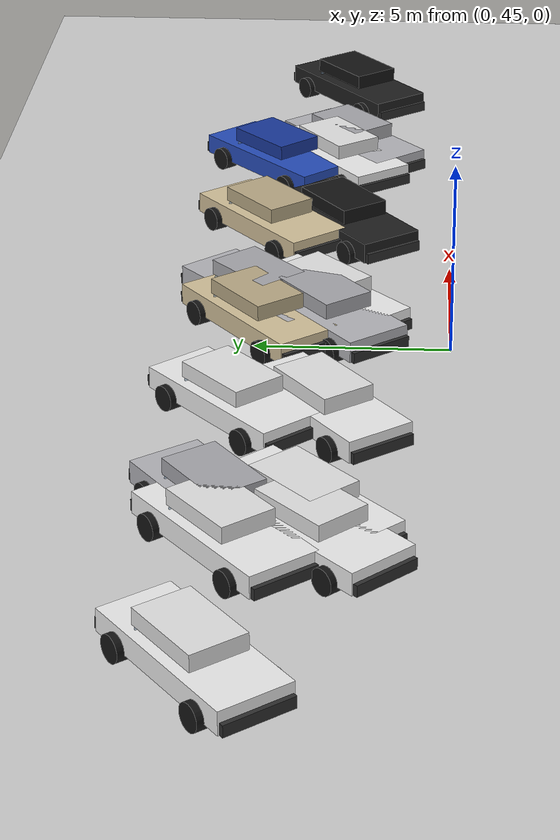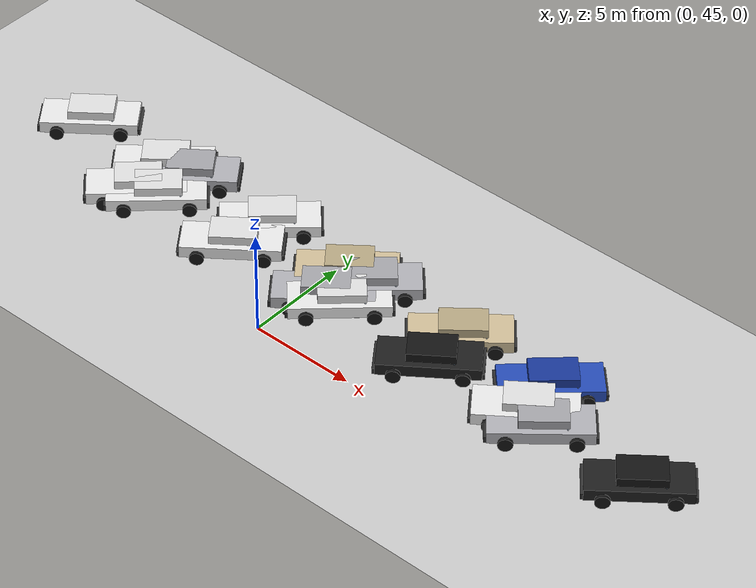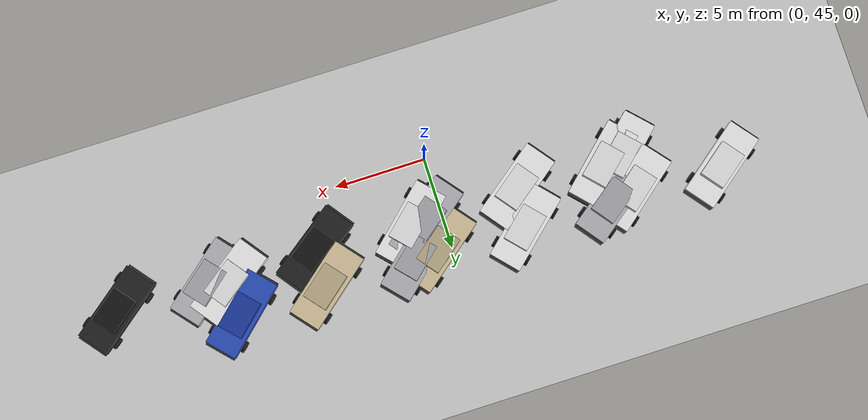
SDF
<sdf version="1.6">
 <world name="parking_lot">
  <model name="ground_plane">
   <static>true</static>
   <link name="link">
    <collision name="collision">
     <geometry><plane><normal>0 0 1</normal><size>400 300</size></plane></geometry>
     <surface><friction><ode><mu>0.8</mu><mu2>0.8</mu2></ode></friction></surface>
    </collision>
    <visual name="visual">
     <cast_shadows>false</cast_shadows>
     <geometry><plane><normal>0 0 1</normal><size>400 300</size></plane></geometry>
     <material>
      <script><uri>file://media/materials/scripts/gazebo.material</uri><name>Gazebo/Grey</name></script>
      <ambient>0.28 0.28 0.27 1</ambient>
      <diffuse>0.32 0.32 0.30 1</diffuse>
      <specular>0.01 0.01 0.01 1</specular>
     </material>
    </visual>
   </link>
  </model>
  <model name="car_0032">
   <static>true</static>
   <pose>-10.052 48.015 0 0 0 0.7639</pose>
   <link name="body">
    <visual name="body_vis">
     <pose>0 0 0.55 0 0 0</pose>
     <geometry><box><size>4.45 1.80 0.55</size></box></geometry>
     <material>
      <ambient>0.15 0.15 0.15 1</ambient>
      <diffuse>0.92 0.92 0.92 1</diffuse>
      <specular>0.4 0.4 0.4 1</specular>
     </material>
    </visual>
    <visual name="roof_vis">
     <pose>0.10 0 1.12 0 0 0</pose>
     <geometry><box><size>2.10 1.40 0.40</size></box></geometry>
     <material>
      <ambient>0.10 0.10 0.10 1</ambient>
      <diffuse>0.88 0.88 0.88 1</diffuse>
      <specular>0.5 0.5 0.5 1</specular>
     </material>
    </visual>
    <visual name="glass_f">
     <pose>1.02 0 0.95 0 -0.45 0</pose>
     <geometry><box><size>0.05 1.35 0.38</size></box></geometry>
     <material><diffuse>0.50 0.60 0.70 0.6</diffuse></material>
    </visual>
    <visual name="bumper_f">
     <pose>2.28 0 0.42 0 0 0</pose>
     <geometry><box><size>0.12 1.72 0.28</size></box></geometry>
     <material><diffuse>0.18 0.18 0.18 1</diffuse></material>
    </visual>
    <visual name="bumper_r">
     <pose>-2.28 0 0.42 0 0 0</pose>
     <geometry><box><size>0.12 1.72 0.28</size></box></geometry>
     <material><diffuse>0.18 0.18 0.18 1</diffuse></material>
    </visual>
    <visual name="wfl">
     <pose>1.45 0.85 0.32 1.5708 0 0</pose>
     <geometry><cylinder><radius>0.32</radius><length>0.44</length></cylinder></geometry>
     <material><diffuse>0.08 0.08 0.08 1</diffuse></material>
    </visual>
    <visual name="wfr">
     <pose>1.45 -0.85 0.32 1.5708 0 0</pose>
     <geometry><cylinder><radius>0.32</radius><length>0.44</length></cylinder></geometry>
     <material><diffuse>0.08 0.08 0.08 1</diffuse></material>
    </visual>
    <visual name="wrl">
     <pose>-1.45 0.85 0.32 1.5708 0 0</pose>
     <geometry><cylinder><radius>0.32</radius><length>0.44</length></cylinder></geometry>
     <material><diffuse>0.08 0.08 0.08 1</diffuse></material>
    </visual>
    <visual name="wrr">
     <pose>-1.45 -0.85 0.32 1.5708 0 0</pose>
     <geometry><cylinder><radius>0.32</radius><length>0.44</length></cylinder></geometry>
     <material><diffuse>0.08 0.08 0.08 1</diffuse></material>
    </visual>
    <collision name="col">
     <pose>0 0 0.55 0 0 0</pose>
     <geometry><box><size>4.45 1.80 1.30</size></box></geometry>
    </collision>
   </link>
  </model>
  <model name="car_0034">
   <static>true</static>
   <pose>-15.059 50.168 0 0 0 0.6656</pose>
   <link name="body">
    <visual name="body_vis">
     <pose>0 0 0.55 0 0 0</pose>
     <geometry><box><size>4.45 1.80 0.55</size></box></geometry>
     <material>
      <ambient>0.15 0.15 0.15 1</ambient>
      <diffuse>0.92 0.92 0.92 1</diffuse>
      <specular>0.4 0.4 0.4 1</specular>
     </material>
    </visual>
    <visual name="roof_vis">
     <pose>0.10 0 1.12 0 0 0</pose>
     <geometry><box><size>2.10 1.40 0.40</size></box></geometry>
     <material>
      <ambient>0.10 0.10 0.10 1</ambient>
      <diffuse>0.88 0.88 0.88 1</diffuse>
      <specular>0.5 0.5 0.5 1</specular>
     </material>
    </visual>
    <visual name="glass_f">
     <pose>1.02 0 0.95 0 -0.45 0</pose>
     <geometry><box><size>0.05 1.35 0.38</size></box></geometry>
     <material><diffuse>0.50 0.60 0.70 0.6</diffuse></material>
    </visual>
    <visual name="bumper_f">
     <pose>2.28 0 0.42 0 0 0</pose>
     <geometry><box><size>0.12 1.72 0.28</size></box></geometry>
     <material><diffuse>0.18 0.18 0.18 1</diffuse></material>
    </visual>
    <visual name="bumper_r">
     <pose>-2.28 0 0.42 0 0 0</pose>
     <geometry><box><size>0.12 1.72 0.28</size></box></geometry>
     <material><diffuse>0.18 0.18 0.18 1</diffuse></material>
    </visual>
    <visual name="wfl">
     <pose>1.45 0.85 0.32 1.5708 0 0</pose>
     <geometry><cylinder><radius>0.32</radius><length>0.44</length></cylinder></geometry>
     <material><diffuse>0.08 0.08 0.08 1</diffuse></material>
    </visual>
    <visual name="wfr">
     <pose>1.45 -0.85 0.32 1.5708 0 0</pose>
     <geometry><cylinder><radius>0.32</radius><length>0.44</length></cylinder></geometry>
     <material><diffuse>0.08 0.08 0.08 1</diffuse></material>
    </visual>
    <visual name="wrl">
     <pose>-1.45 0.85 0.32 1.5708 0 0</pose>
     <geometry><cylinder><radius>0.32</radius><length>0.44</length></cylinder></geometry>
     <material><diffuse>0.08 0.08 0.08 1</diffuse></material>
    </visual>
    <visual name="wrr">
     <pose>-1.45 -0.85 0.32 1.5708 0 0</pose>
     <geometry><cylinder><radius>0.32</radius><length>0.44</length></cylinder></geometry>
     <material><diffuse>0.08 0.08 0.08 1</diffuse></material>
    </visual>
    <collision name="col">
     <pose>0 0 0.55 0 0 0</pose>
     <geometry><box><size>4.45 1.80 1.30</size></box></geometry>
    </collision>
   </link>
  </model>
  <model name="car_0035">
   <static>true</static>
   <pose>-10.230 49.956 0 0 0 0.6890</pose>
   <link name="body">
    <visual name="body_vis">
     <pose>0 0 0.55 0 0 0</pose>
     <geometry><box><size>4.45 1.80 0.55</size></box></geometry>
     <material>
      <ambient>0.15 0.15 0.15 1</ambient>
      <diffuse>0.92 0.92 0.92 1</diffuse>
      <specular>0.4 0.4 0.4 1</specular>
     </material>
    </visual>
    <visual name="roof_vis">
     <pose>0.10 0 1.12 0 0 0</pose>
     <geometry><box><size>2.10 1.40 0.40</size></box></geometry>
     <material>
      <ambient>0.10 0.10 0.10 1</ambient>
      <diffuse>0.88 0.88 0.88 1</diffuse>
      <specular>0.5 0.5 0.5 1</specular>
     </material>
    </visual>
    <visual name="glass_f">
     <pose>1.02 0 0.95 0 -0.45 0</pose>
     <geometry><box><size>0.05 1.35 0.38</size></box></geometry>
     <material><diffuse>0.50 0.60 0.70 0.6</diffuse></material>
    </visual>
    <visual name="bumper_f">
     <pose>2.28 0 0.42 0 0 0</pose>
     <geometry><box><size>0.12 1.72 0.28</size></box></geometry>
     <material><diffuse>0.18 0.18 0.18 1</diffuse></material>
    </visual>
    <visual name="bumper_r">
     <pose>-2.28 0 0.42 0 0 0</pose>
     <geometry><box><size>0.12 1.72 0.28</size></box></geometry>
     <material><diffuse>0.18 0.18 0.18 1</diffuse></material>
    </visual>
    <visual name="wfl">
     <pose>1.45 0.85 0.32 1.5708 0 0</pose>
     <geometry><cylinder><radius>0.32</radius><length>0.44</length></cylinder></geometry>
     <material><diffuse>0.08 0.08 0.08 1</diffuse></material>
    </visual>
    <visual name="wfr">
     <pose>1.45 -0.85 0.32 1.5708 0 0</pose>
     <geometry><cylinder><radius>0.32</radius><length>0.44</length></cylinder></geometry>
     <material><diffuse>0.08 0.08 0.08 1</diffuse></material>
    </visual>
    <visual name="wrl">
     <pose>-1.45 0.85 0.32 1.5708 0 0</pose>
     <geometry><cylinder><radius>0.32</radius><length>0.44</length></cylinder></geometry>
     <material><diffuse>0.08 0.08 0.08 1</diffuse></material>
    </visual>
    <visual name="wrr">
     <pose>-1.45 -0.85 0.32 1.5708 0 0</pose>
     <geometry><cylinder><radius>0.32</radius><length>0.44</length></cylinder></geometry>
     <material><diffuse>0.08 0.08 0.08 1</diffuse></material>
    </visual>
    <collision name="col">
     <pose>0 0 0.55 0 0 0</pose>
     <geometry><box><size>4.45 1.80 1.30</size></box></geometry>
    </collision>
   </link>
  </model>
  <model name="car_0036">
   <static>true</static>
   <pose>-9.023 48.227 0 0 0 0.7506</pose>
   <link name="body">
    <visual name="body_vis">
     <pose>0 0 0.55 0 0 0</pose>
     <geometry><box><size>4.45 1.80 0.55</size></box></geometry>
     <material>
      <ambient>0.15 0.15 0.15 1</ambient>
      <diffuse>0.92 0.92 0.92 1</diffuse>
      <specular>0.4 0.4 0.4 1</specular>
     </material>
    </visual>
    <visual name="roof_vis">
     <pose>0.10 0 1.12 0 0 0</pose>
     <geometry><box><size>2.10 1.40 0.40</size></box></geometry>
     <material>
      <ambient>0.10 0.10 0.10 1</ambient>
      <diffuse>0.88 0.88 0.88 1</diffuse>
      <specular>0.5 0.5 0.5 1</specular>
     </material>
    </visual>
    <visual name="glass_f">
     <pose>1.02 0 0.95 0 -0.45 0</pose>
     <geometry><box><size>0.05 1.35 0.38</size></box></geometry>
     <material><diffuse>0.50 0.60 0.70 0.6</diffuse></material>
    </visual>
    <visual name="bumper_f">
     <pose>2.28 0 0.42 0 0 0</pose>
     <geometry><box><size>0.12 1.72 0.28</size></box></geometry>
     <material><diffuse>0.18 0.18 0.18 1</diffuse></material>
    </visual>
    <visual name="bumper_r">
     <pose>-2.28 0 0.42 0 0 0</pose>
     <geometry><box><size>0.12 1.72 0.28</size></box></geometry>
     <material><diffuse>0.18 0.18 0.18 1</diffuse></material>
    </visual>
    <visual name="wfl">
     <pose>1.45 0.85 0.32 1.5708 0 0</pose>
     <geometry><cylinder><radius>0.32</radius><length>0.44</length></cylinder></geometry>
     <material><diffuse>0.08 0.08 0.08 1</diffuse></material>
    </visual>
    <visual name="wfr">
     <pose>1.45 -0.85 0.32 1.5708 0 0</pose>
     <geometry><cylinder><radius>0.32</radius><length>0.44</length></cylinder></geometry>
     <material><diffuse>0.08 0.08 0.08 1</diffuse></material>
    </visual>
    <visual name="wrl">
     <pose>-1.45 0.85 0.32 1.5708 0 0</pose>
     <geometry><cylinder><radius>0.32</radius><length>0.44</length></cylinder></geometry>
     <material><diffuse>0.08 0.08 0.08 1</diffuse></material>
    </visual>
    <visual name="wrr">
     <pose>-1.45 -0.85 0.32 1.5708 0 0</pose>
     <geometry><cylinder><radius>0.32</radius><length>0.44</length></cylinder></geometry>
     <material><diffuse>0.08 0.08 0.08 1</diffuse></material>
    </visual>
    <collision name="col">
     <pose>0 0 0.55 0 0 0</pose>
     <geometry><box><size>4.45 1.80 1.30</size></box></geometry>
    </collision>
   </link>
  </model>
  <model name="car_0037">
   <static>true</static>
   <pose>-4.268 48.000 0 0 0 0.6533</pose>
   <link name="body">
    <visual name="body_vis">
     <pose>0 0 0.55 0 0 0</pose>
     <geometry><box><size>4.45 1.80 0.55</size></box></geometry>
     <material>
      <ambient>0.15 0.15 0.15 1</ambient>
      <diffuse>0.92 0.92 0.92 1</diffuse>
      <specular>0.4 0.4 0.4 1</specular>
     </material>
    </visual>
    <visual name="roof_vis">
     <pose>0.10 0 1.12 0 0 0</pose>
     <geometry><box><size>2.10 1.40 0.40</size></box></geometry>
     <material>
      <ambient>0.10 0.10 0.10 1</ambient>
      <diffuse>0.88 0.88 0.88 1</diffuse>
      <specular>0.5 0.5 0.5 1</specular>
     </material>
    </visual>
    <visual name="glass_f">
     <pose>1.02 0 0.95 0 -0.45 0</pose>
     <geometry><box><size>0.05 1.35 0.38</size></box></geometry>
     <material><diffuse>0.50 0.60 0.70 0.6</diffuse></material>
    </visual>
    <visual name="bumper_f">
     <pose>2.28 0 0.42 0 0 0</pose>
     <geometry><box><size>0.12 1.72 0.28</size></box></geometry>
     <material><diffuse>0.18 0.18 0.18 1</diffuse></material>
    </visual>
    <visual name="bumper_r">
     <pose>-2.28 0 0.42 0 0 0</pose>
     <geometry><box><size>0.12 1.72 0.28</size></box></geometry>
     <material><diffuse>0.18 0.18 0.18 1</diffuse></material>
    </visual>
    <visual name="wfl">
     <pose>1.45 0.85 0.32 1.5708 0 0</pose>
     <geometry><cylinder><radius>0.32</radius><length>0.44</length></cylinder></geometry>
     <material><diffuse>0.08 0.08 0.08 1</diffuse></material>
    </visual>
    <visual name="wfr">
     <pose>1.45 -0.85 0.32 1.5708 0 0</pose>
     <geometry><cylinder><radius>0.32</radius><length>0.44</length></cylinder></geometry>
     <material><diffuse>0.08 0.08 0.08 1</diffuse></material>
    </visual>
    <visual name="wrl">
     <pose>-1.45 0.85 0.32 1.5708 0 0</pose>
     <geometry><cylinder><radius>0.32</radius><length>0.44</length></cylinder></geometry>
     <material><diffuse>0.08 0.08 0.08 1</diffuse></material>
    </visual>
    <visual name="wrr">
     <pose>-1.45 -0.85 0.32 1.5708 0 0</pose>
     <geometry><cylinder><radius>0.32</radius><length>0.44</length></cylinder></geometry>
     <material><diffuse>0.08 0.08 0.08 1</diffuse></material>
    </visual>
    <collision name="col">
     <pose>0 0 0.55 0 0 0</pose>
     <geometry><box><size>4.45 1.80 1.30</size></box></geometry>
    </collision>
   </link>
  </model>
  <model name="car_0038">
   <static>true</static>
   <pose>0.906 48.185 0 0 0 0.6700</pose>
   <link name="body">
    <visual name="body_vis">
     <pose>0 0 0.55 0 0 0</pose>
     <geometry><box><size>4.45 1.80 0.55</size></box></geometry>
     <material>
      <ambient>0.15 0.15 0.15 1</ambient>
      <diffuse>0.70 0.70 0.72 1</diffuse>
      <specular>0.4 0.4 0.4 1</specular>
     </material>
    </visual>
    <visual name="roof_vis">
     <pose>0.10 0 1.12 0 0 0</pose>
     <geometry><box><size>2.10 1.40 0.40</size></box></geometry>
     <material>
      <ambient>0.10 0.10 0.10 1</ambient>
      <diffuse>0.65 0.65 0.67 1</diffuse>
      <specular>0.5 0.5 0.5 1</specular>
     </material>
    </visual>
    <visual name="glass_f">
     <pose>1.02 0 0.95 0 -0.45 0</pose>
     <geometry><box><size>0.05 1.35 0.38</size></box></geometry>
     <material><diffuse>0.50 0.60 0.70 0.6</diffuse></material>
    </visual>
    <visual name="bumper_f">
     <pose>2.28 0 0.42 0 0 0</pose>
     <geometry><box><size>0.12 1.72 0.28</size></box></geometry>
     <material><diffuse>0.18 0.18 0.18 1</diffuse></material>
    </visual>
    <visual name="bumper_r">
     <pose>-2.28 0 0.42 0 0 0</pose>
     <geometry><box><size>0.12 1.72 0.28</size></box></geometry>
     <material><diffuse>0.18 0.18 0.18 1</diffuse></material>
    </visual>
    <visual name="wfl">
     <pose>1.45 0.85 0.32 1.5708 0 0</pose>
     <geometry><cylinder><radius>0.32</radius><length>0.44</length></cylinder></geometry>
     <material><diffuse>0.08 0.08 0.08 1</diffuse></material>
    </visual>
    <visual name="wfr">
     <pose>1.45 -0.85 0.32 1.5708 0 0</pose>
     <geometry><cylinder><radius>0.32</radius><length>0.44</length></cylinder></geometry>
     <material><diffuse>0.08 0.08 0.08 1</diffuse></material>
    </visual>
    <visual name="wrl">
     <pose>-1.45 0.85 0.32 1.5708 0 0</pose>
     <geometry><cylinder><radius>0.32</radius><length>0.44</length></cylinder></geometry>
     <material><diffuse>0.08 0.08 0.08 1</diffuse></material>
    </visual>
    <visual name="wrr">
     <pose>-1.45 -0.85 0.32 1.5708 0 0</pose>
     <geometry><cylinder><radius>0.32</radius><length>0.44</length></cylinder></geometry>
     <material><diffuse>0.08 0.08 0.08 1</diffuse></material>
    </visual>
    <collision name="col">
     <pose>0 0 0.55 0 0 0</pose>
     <geometry><box><size>4.45 1.80 1.30</size></box></geometry>
    </collision>
   </link>
  </model>
  <model name="car_0039">
   <static>true</static>
   <pose>-8.931 50.204 0 0 0 0.6497</pose>
   <link name="body">
    <visual name="body_vis">
     <pose>0 0 0.55 0 0 0</pose>
     <geometry><box><size>4.45 1.80 0.55</size></box></geometry>
     <material>
      <ambient>0.15 0.15 0.15 1</ambient>
      <diffuse>0.70 0.70 0.72 1</diffuse>
      <specular>0.4 0.4 0.4 1</specular>
     </material>
    </visual>
    <visual name="roof_vis">
     <pose>0.10 0 1.12 0 0 0</pose>
     <geometry><box><size>2.10 1.40 0.40</size></box></geometry>
     <material>
      <ambient>0.10 0.10 0.10 1</ambient>
      <diffuse>0.65 0.65 0.67 1</diffuse>
      <specular>0.5 0.5 0.5 1</specular>
     </material>
    </visual>
    <visual name="glass_f">
     <pose>1.02 0 0.95 0 -0.45 0</pose>
     <geometry><box><size>0.05 1.35 0.38</size></box></geometry>
     <material><diffuse>0.50 0.60 0.70 0.6</diffuse></material>
    </visual>
    <visual name="bumper_f">
     <pose>2.28 0 0.42 0 0 0</pose>
     <geometry><box><size>0.12 1.72 0.28</size></box></geometry>
     <material><diffuse>0.18 0.18 0.18 1</diffuse></material>
    </visual>
    <visual name="bumper_r">
     <pose>-2.28 0 0.42 0 0 0</pose>
     <geometry><box><size>0.12 1.72 0.28</size></box></geometry>
     <material><diffuse>0.18 0.18 0.18 1</diffuse></material>
    </visual>
    <visual name="wfl">
     <pose>1.45 0.85 0.32 1.5708 0 0</pose>
     <geometry><cylinder><radius>0.32</radius><length>0.44</length></cylinder></geometry>
     <material><diffuse>0.08 0.08 0.08 1</diffuse></material>
    </visual>
    <visual name="wfr">
     <pose>1.45 -0.85 0.32 1.5708 0 0</pose>
     <geometry><cylinder><radius>0.32</radius><length>0.44</length></cylinder></geometry>
     <material><diffuse>0.08 0.08 0.08 1</diffuse></material>
    </visual>
    <visual name="wrl">
     <pose>-1.45 0.85 0.32 1.5708 0 0</pose>
     <geometry><cylinder><radius>0.32</radius><length>0.44</length></cylinder></geometry>
     <material><diffuse>0.08 0.08 0.08 1</diffuse></material>
    </visual>
    <visual name="wrr">
     <pose>-1.45 -0.85 0.32 1.5708 0 0</pose>
     <geometry><cylinder><radius>0.32</radius><length>0.44</length></cylinder></geometry>
     <material><diffuse>0.08 0.08 0.08 1</diffuse></material>
    </visual>
    <collision name="col">
     <pose>0 0 0.55 0 0 0</pose>
     <geometry><box><size>4.45 1.80 1.30</size></box></geometry>
    </collision>
   </link>
  </model>
  <model name="car_0040">
   <static>true</static>
   <pose>-4.019 50.170 0 0 0 0.7370</pose>
   <link name="body">
    <visual name="body_vis">
     <pose>0 0 0.55 0 0 0</pose>
     <geometry><box><size>4.45 1.80 0.55</size></box></geometry>
     <material>
      <ambient>0.15 0.15 0.15 1</ambient>
      <diffuse>0.92 0.92 0.92 1</diffuse>
      <specular>0.4 0.4 0.4 1</specular>
     </material>
    </visual>
    <visual name="roof_vis">
     <pose>0.10 0 1.12 0 0 0</pose>
     <geometry><box><size>2.10 1.40 0.40</size></box></geometry>
     <material>
      <ambient>0.10 0.10 0.10 1</ambient>
      <diffuse>0.88 0.88 0.88 1</diffuse>
      <specular>0.5 0.5 0.5 1</specular>
     </material>
    </visual>
    <visual name="glass_f">
     <pose>1.02 0 0.95 0 -0.45 0</pose>
     <geometry><box><size>0.05 1.35 0.38</size></box></geometry>
     <material><diffuse>0.50 0.60 0.70 0.6</diffuse></material>
    </visual>
    <visual name="bumper_f">
     <pose>2.28 0 0.42 0 0 0</pose>
     <geometry><box><size>0.12 1.72 0.28</size></box></geometry>
     <material><diffuse>0.18 0.18 0.18 1</diffuse></material>
    </visual>
    <visual name="bumper_r">
     <pose>-2.28 0 0.42 0 0 0</pose>
     <geometry><box><size>0.12 1.72 0.28</size></box></geometry>
     <material><diffuse>0.18 0.18 0.18 1</diffuse></material>
    </visual>
    <visual name="wfl">
     <pose>1.45 0.85 0.32 1.5708 0 0</pose>
     <geometry><cylinder><radius>0.32</radius><length>0.44</length></cylinder></geometry>
     <material><diffuse>0.08 0.08 0.08 1</diffuse></material>
    </visual>
    <visual name="wfr">
     <pose>1.45 -0.85 0.32 1.5708 0 0</pose>
     <geometry><cylinder><radius>0.32</radius><length>0.44</length></cylinder></geometry>
     <material><diffuse>0.08 0.08 0.08 1</diffuse></material>
    </visual>
    <visual name="wrl">
     <pose>-1.45 0.85 0.32 1.5708 0 0</pose>
     <geometry><cylinder><radius>0.32</radius><length>0.44</length></cylinder></geometry>
     <material><diffuse>0.08 0.08 0.08 1</diffuse></material>
    </visual>
    <visual name="wrr">
     <pose>-1.45 -0.85 0.32 1.5708 0 0</pose>
     <geometry><cylinder><radius>0.32</radius><length>0.44</length></cylinder></geometry>
     <material><diffuse>0.08 0.08 0.08 1</diffuse></material>
    </visual>
    <collision name="col">
     <pose>0 0 0.55 0 0 0</pose>
     <geometry><box><size>4.45 1.80 1.30</size></box></geometry>
    </collision>
   </link>
  </model>
  <model name="car_0041">
   <static>true</static>
   <pose>0.715 49.900 0 0 0 0.6736</pose>
   <link name="body">
    <visual name="body_vis">
     <pose>0 0 0.55 0 0 0</pose>
     <geometry><box><size>4.45 1.80 0.55</size></box></geometry>
     <material>
      <ambient>0.15 0.15 0.15 1</ambient>
      <diffuse>0.82 0.75 0.60 1</diffuse>
      <specular>0.4 0.4 0.4 1</specular>
     </material>
    </visual>
    <visual name="roof_vis">
     <pose>0.10 0 1.12 0 0 0</pose>
     <geometry><box><size>2.10 1.40 0.40</size></box></geometry>
     <material>
      <ambient>0.10 0.10 0.10 1</ambient>
      <diffuse>0.72 0.66 0.52 1</diffuse>
      <specular>0.5 0.5 0.5 1</specular>
     </material>
    </visual>
    <visual name="glass_f">
     <pose>1.02 0 0.95 0 -0.45 0</pose>
     <geometry><box><size>0.05 1.35 0.38</size></box></geometry>
     <material><diffuse>0.50 0.60 0.70 0.6</diffuse></material>
    </visual>
    <visual name="bumper_f">
     <pose>2.28 0 0.42 0 0 0</pose>
     <geometry><box><size>0.12 1.72 0.28</size></box></geometry>
     <material><diffuse>0.18 0.18 0.18 1</diffuse></material>
    </visual>
    <visual name="bumper_r">
     <pose>-2.28 0 0.42 0 0 0</pose>
     <geometry><box><size>0.12 1.72 0.28</size></box></geometry>
     <material><diffuse>0.18 0.18 0.18 1</diffuse></material>
    </visual>
    <visual name="wfl">
     <pose>1.45 0.85 0.32 1.5708 0 0</pose>
     <geometry><cylinder><radius>0.32</radius><length>0.44</length></cylinder></geometry>
     <material><diffuse>0.08 0.08 0.08 1</diffuse></material>
    </visual>
    <visual name="wfr">
     <pose>1.45 -0.85 0.32 1.5708 0 0</pose>
     <geometry><cylinder><radius>0.32</radius><length>0.44</length></cylinder></geometry>
     <material><diffuse>0.08 0.08 0.08 1</diffuse></material>
    </visual>
    <visual name="wrl">
     <pose>-1.45 0.85 0.32 1.5708 0 0</pose>
     <geometry><cylinder><radius>0.32</radius><length>0.44</length></cylinder></geometry>
     <material><diffuse>0.08 0.08 0.08 1</diffuse></material>
    </visual>
    <visual name="wrr">
     <pose>-1.45 -0.85 0.32 1.5708 0 0</pose>
     <geometry><cylinder><radius>0.32</radius><length>0.44</length></cylinder></geometry>
     <material><diffuse>0.08 0.08 0.08 1</diffuse></material>
    </visual>
    <collision name="col">
     <pose>0 0 0.55 0 0 0</pose>
     <geometry><box><size>4.45 1.80 1.30</size></box></geometry>
    </collision>
   </link>
  </model>
  <model name="car_0042">
   <static>true</static>
   <pose>1.760 48.215 0 0 0 0.7510</pose>
   <link name="body">
    <visual name="body_vis">
     <pose>0 0 0.55 0 0 0</pose>
     <geometry><box><size>4.45 1.80 0.55</size></box></geometry>
     <material>
      <ambient>0.15 0.15 0.15 1</ambient>
      <diffuse>0.92 0.92 0.92 1</diffuse>
      <specular>0.4 0.4 0.4 1</specular>
     </material>
    </visual>
    <visual name="roof_vis">
     <pose>0.10 0 1.12 0 0 0</pose>
     <geometry><box><size>2.10 1.40 0.40</size></box></geometry>
     <material>
      <ambient>0.10 0.10 0.10 1</ambient>
      <diffuse>0.88 0.88 0.88 1</diffuse>
      <specular>0.5 0.5 0.5 1</specular>
     </material>
    </visual>
    <visual name="glass_f">
     <pose>1.02 0 0.95 0 -0.45 0</pose>
     <geometry><box><size>0.05 1.35 0.38</size></box></geometry>
     <material><diffuse>0.50 0.60 0.70 0.6</diffuse></material>
    </visual>
    <visual name="bumper_f">
     <pose>2.28 0 0.42 0 0 0</pose>
     <geometry><box><size>0.12 1.72 0.28</size></box></geometry>
     <material><diffuse>0.18 0.18 0.18 1</diffuse></material>
    </visual>
    <visual name="bumper_r">
     <pose>-2.28 0 0.42 0 0 0</pose>
     <geometry><box><size>0.12 1.72 0.28</size></box></geometry>
     <material><diffuse>0.18 0.18 0.18 1</diffuse></material>
    </visual>
    <visual name="wfl">
     <pose>1.45 0.85 0.32 1.5708 0 0</pose>
     <geometry><cylinder><radius>0.32</radius><length>0.44</length></cylinder></geometry>
     <material><diffuse>0.08 0.08 0.08 1</diffuse></material>
    </visual>
    <visual name="wfr">
     <pose>1.45 -0.85 0.32 1.5708 0 0</pose>
     <geometry><cylinder><radius>0.32</radius><length>0.44</length></cylinder></geometry>
     <material><diffuse>0.08 0.08 0.08 1</diffuse></material>
    </visual>
    <visual name="wrl">
     <pose>-1.45 0.85 0.32 1.5708 0 0</pose>
     <geometry><cylinder><radius>0.32</radius><length>0.44</length></cylinder></geometry>
     <material><diffuse>0.08 0.08 0.08 1</diffuse></material>
    </visual>
    <visual name="wrr">
     <pose>-1.45 -0.85 0.32 1.5708 0 0</pose>
     <geometry><cylinder><radius>0.32</radius><length>0.44</length></cylinder></geometry>
     <material><diffuse>0.08 0.08 0.08 1</diffuse></material>
    </visual>
    <collision name="col">
     <pose>0 0 0.55 0 0 0</pose>
     <geometry><box><size>4.45 1.80 1.30</size></box></geometry>
    </collision>
   </link>
  </model>
  <model name="car_0043">
   <static>true</static>
   <pose>7.016 47.904 0 0 0 0.6364</pose>
   <link name="body">
    <visual name="body_vis">
     <pose>0 0 0.55 0 0 0</pose>
     <geometry><box><size>4.45 1.80 0.55</size></box></geometry>
     <material>
      <ambient>0.15 0.15 0.15 1</ambient>
      <diffuse>0.12 0.12 0.12 1</diffuse>
      <specular>0.4 0.4 0.4 1</specular>
     </material>
    </visual>
    <visual name="roof_vis">
     <pose>0.10 0 1.12 0 0 0</pose>
     <geometry><box><size>2.10 1.40 0.40</size></box></geometry>
     <material>
      <ambient>0.10 0.10 0.10 1</ambient>
      <diffuse>0.08 0.08 0.08 1</diffuse>
      <specular>0.5 0.5 0.5 1</specular>
     </material>
    </visual>
    <visual name="glass_f">
     <pose>1.02 0 0.95 0 -0.45 0</pose>
     <geometry><box><size>0.05 1.35 0.38</size></box></geometry>
     <material><diffuse>0.50 0.60 0.70 0.6</diffuse></material>
    </visual>
    <visual name="bumper_f">
     <pose>2.28 0 0.42 0 0 0</pose>
     <geometry><box><size>0.12 1.72 0.28</size></box></geometry>
     <material><diffuse>0.18 0.18 0.18 1</diffuse></material>
    </visual>
    <visual name="bumper_r">
     <pose>-2.28 0 0.42 0 0 0</pose>
     <geometry><box><size>0.12 1.72 0.28</size></box></geometry>
     <material><diffuse>0.18 0.18 0.18 1</diffuse></material>
    </visual>
    <visual name="wfl">
     <pose>1.45 0.85 0.32 1.5708 0 0</pose>
     <geometry><cylinder><radius>0.32</radius><length>0.44</length></cylinder></geometry>
     <material><diffuse>0.08 0.08 0.08 1</diffuse></material>
    </visual>
    <visual name="wfr">
     <pose>1.45 -0.85 0.32 1.5708 0 0</pose>
     <geometry><cylinder><radius>0.32</radius><length>0.44</length></cylinder></geometry>
     <material><diffuse>0.08 0.08 0.08 1</diffuse></material>
    </visual>
    <visual name="wrl">
     <pose>-1.45 0.85 0.32 1.5708 0 0</pose>
     <geometry><cylinder><radius>0.32</radius><length>0.44</length></cylinder></geometry>
     <material><diffuse>0.08 0.08 0.08 1</diffuse></material>
    </visual>
    <visual name="wrr">
     <pose>-1.45 -0.85 0.32 1.5708 0 0</pose>
     <geometry><cylinder><radius>0.32</radius><length>0.44</length></cylinder></geometry>
     <material><diffuse>0.08 0.08 0.08 1</diffuse></material>
    </visual>
    <collision name="col">
     <pose>0 0 0.55 0 0 0</pose>
     <geometry><box><size>4.45 1.80 1.30</size></box></geometry>
    </collision>
   </link>
  </model>
  <model name="car_0044">
   <static>true</static>
   <pose>11.889 48.223 0 0 0 0.6403</pose>
   <link name="body">
    <visual name="body_vis">
     <pose>0 0 0.55 0 0 0</pose>
     <geometry><box><size>4.45 1.80 0.55</size></box></geometry>
     <material>
      <ambient>0.15 0.15 0.15 1</ambient>
      <diffuse>0.92 0.92 0.92 1</diffuse>
      <specular>0.4 0.4 0.4 1</specular>
     </material>
    </visual>
    <visual name="roof_vis">
     <pose>0.10 0 1.12 0 0 0</pose>
     <geometry><box><size>2.10 1.40 0.40</size></box></geometry>
     <material>
      <ambient>0.10 0.10 0.10 1</ambient>
      <diffuse>0.88 0.88 0.88 1</diffuse>
      <specular>0.5 0.5 0.5 1</specular>
     </material>
    </visual>
    <visual name="glass_f">
     <pose>1.02 0 0.95 0 -0.45 0</pose>
     <geometry><box><size>0.05 1.35 0.38</size></box></geometry>
     <material><diffuse>0.50 0.60 0.70 0.6</diffuse></material>
    </visual>
    <visual name="bumper_f">
     <pose>2.28 0 0.42 0 0 0</pose>
     <geometry><box><size>0.12 1.72 0.28</size></box></geometry>
     <material><diffuse>0.18 0.18 0.18 1</diffuse></material>
    </visual>
    <visual name="bumper_r">
     <pose>-2.28 0 0.42 0 0 0</pose>
     <geometry><box><size>0.12 1.72 0.28</size></box></geometry>
     <material><diffuse>0.18 0.18 0.18 1</diffuse></material>
    </visual>
    <visual name="wfl">
     <pose>1.45 0.85 0.32 1.5708 0 0</pose>
     <geometry><cylinder><radius>0.32</radius><length>0.44</length></cylinder></geometry>
     <material><diffuse>0.08 0.08 0.08 1</diffuse></material>
    </visual>
    <visual name="wfr">
     <pose>1.45 -0.85 0.32 1.5708 0 0</pose>
     <geometry><cylinder><radius>0.32</radius><length>0.44</length></cylinder></geometry>
     <material><diffuse>0.08 0.08 0.08 1</diffuse></material>
    </visual>
    <visual name="wrl">
     <pose>-1.45 0.85 0.32 1.5708 0 0</pose>
     <geometry><cylinder><radius>0.32</radius><length>0.44</length></cylinder></geometry>
     <material><diffuse>0.08 0.08 0.08 1</diffuse></material>
    </visual>
    <visual name="wrr">
     <pose>-1.45 -0.85 0.32 1.5708 0 0</pose>
     <geometry><cylinder><radius>0.32</radius><length>0.44</length></cylinder></geometry>
     <material><diffuse>0.08 0.08 0.08 1</diffuse></material>
    </visual>
    <collision name="col">
     <pose>0 0 0.55 0 0 0</pose>
     <geometry><box><size>4.45 1.80 1.30</size></box></geometry>
    </collision>
   </link>
  </model>
  <model name="car_0045">
   <static>true</static>
   <pose>1.993 49.935 0 0 0 0.7345</pose>
   <link name="body">
    <visual name="body_vis">
     <pose>0 0 0.55 0 0 0</pose>
     <geometry><box><size>4.45 1.80 0.55</size></box></geometry>
     <material>
      <ambient>0.15 0.15 0.15 1</ambient>
      <diffuse>0.70 0.70 0.72 1</diffuse>
      <specular>0.4 0.4 0.4 1</specular>
     </material>
    </visual>
    <visual name="roof_vis">
     <pose>0.10 0 1.12 0 0 0</pose>
     <geometry><box><size>2.10 1.40 0.40</size></box></geometry>
     <material>
      <ambient>0.10 0.10 0.10 1</ambient>
      <diffuse>0.65 0.65 0.67 1</diffuse>
      <specular>0.5 0.5 0.5 1</specular>
     </material>
    </visual>
    <visual name="glass_f">
     <pose>1.02 0 0.95 0 -0.45 0</pose>
     <geometry><box><size>0.05 1.35 0.38</size></box></geometry>
     <material><diffuse>0.50 0.60 0.70 0.6</diffuse></material>
    </visual>
    <visual name="bumper_f">
     <pose>2.28 0 0.42 0 0 0</pose>
     <geometry><box><size>0.12 1.72 0.28</size></box></geometry>
     <material><diffuse>0.18 0.18 0.18 1</diffuse></material>
    </visual>
    <visual name="bumper_r">
     <pose>-2.28 0 0.42 0 0 0</pose>
     <geometry><box><size>0.12 1.72 0.28</size></box></geometry>
     <material><diffuse>0.18 0.18 0.18 1</diffuse></material>
    </visual>
    <visual name="wfl">
     <pose>1.45 0.85 0.32 1.5708 0 0</pose>
     <geometry><cylinder><radius>0.32</radius><length>0.44</length></cylinder></geometry>
     <material><diffuse>0.08 0.08 0.08 1</diffuse></material>
    </visual>
    <visual name="wfr">
     <pose>1.45 -0.85 0.32 1.5708 0 0</pose>
     <geometry><cylinder><radius>0.32</radius><length>0.44</length></cylinder></geometry>
     <material><diffuse>0.08 0.08 0.08 1</diffuse></material>
    </visual>
    <visual name="wrl">
     <pose>-1.45 0.85 0.32 1.5708 0 0</pose>
     <geometry><cylinder><radius>0.32</radius><length>0.44</length></cylinder></geometry>
     <material><diffuse>0.08 0.08 0.08 1</diffuse></material>
    </visual>
    <visual name="wrr">
     <pose>-1.45 -0.85 0.32 1.5708 0 0</pose>
     <geometry><cylinder><radius>0.32</radius><length>0.44</length></cylinder></geometry>
     <material><diffuse>0.08 0.08 0.08 1</diffuse></material>
    </visual>
    <collision name="col">
     <pose>0 0 0.55 0 0 0</pose>
     <geometry><box><size>4.45 1.80 1.30</size></box></geometry>
    </collision>
   </link>
  </model>
  <model name="car_0046">
   <static>true</static>
   <pose>6.983 49.964 0 0 0 0.6947</pose>
   <link name="body">
    <visual name="body_vis">
     <pose>0 0 0.55 0 0 0</pose>
     <geometry><box><size>4.45 1.80 0.55</size></box></geometry>
     <material>
      <ambient>0.15 0.15 0.15 1</ambient>
      <diffuse>0.82 0.75 0.60 1</diffuse>
      <specular>0.4 0.4 0.4 1</specular>
     </material>
    </visual>
    <visual name="roof_vis">
     <pose>0.10 0 1.12 0 0 0</pose>
     <geometry><box><size>2.10 1.40 0.40</size></box></geometry>
     <material>
      <ambient>0.10 0.10 0.10 1</ambient>
      <diffuse>0.72 0.66 0.52 1</diffuse>
      <specular>0.5 0.5 0.5 1</specular>
     </material>
    </visual>
    <visual name="glass_f">
     <pose>1.02 0 0.95 0 -0.45 0</pose>
     <geometry><box><size>0.05 1.35 0.38</size></box></geometry>
     <material><diffuse>0.50 0.60 0.70 0.6</diffuse></material>
    </visual>
    <visual name="bumper_f">
     <pose>2.28 0 0.42 0 0 0</pose>
     <geometry><box><size>0.12 1.72 0.28</size></box></geometry>
     <material><diffuse>0.18 0.18 0.18 1</diffuse></material>
    </visual>
    <visual name="bumper_r">
     <pose>-2.28 0 0.42 0 0 0</pose>
     <geometry><box><size>0.12 1.72 0.28</size></box></geometry>
     <material><diffuse>0.18 0.18 0.18 1</diffuse></material>
    </visual>
    <visual name="wfl">
     <pose>1.45 0.85 0.32 1.5708 0 0</pose>
     <geometry><cylinder><radius>0.32</radius><length>0.44</length></cylinder></geometry>
     <material><diffuse>0.08 0.08 0.08 1</diffuse></material>
    </visual>
    <visual name="wfr">
     <pose>1.45 -0.85 0.32 1.5708 0 0</pose>
     <geometry><cylinder><radius>0.32</radius><length>0.44</length></cylinder></geometry>
     <material><diffuse>0.08 0.08 0.08 1</diffuse></material>
    </visual>
    <visual name="wrl">
     <pose>-1.45 0.85 0.32 1.5708 0 0</pose>
     <geometry><cylinder><radius>0.32</radius><length>0.44</length></cylinder></geometry>
     <material><diffuse>0.08 0.08 0.08 1</diffuse></material>
    </visual>
    <visual name="wrr">
     <pose>-1.45 -0.85 0.32 1.5708 0 0</pose>
     <geometry><cylinder><radius>0.32</radius><length>0.44</length></cylinder></geometry>
     <material><diffuse>0.08 0.08 0.08 1</diffuse></material>
    </visual>
    <collision name="col">
     <pose>0 0 0.55 0 0 0</pose>
     <geometry><box><size>4.45 1.80 1.30</size></box></geometry>
    </collision>
   </link>
  </model>
  <model name="car_0047">
   <static>true</static>
   <pose>11.725 50.033 0 0 0 0.7501</pose>
   <link name="body">
    <visual name="body_vis">
     <pose>0 0 0.55 0 0 0</pose>
     <geometry><box><size>4.45 1.80 0.55</size></box></geometry>
     <material>
      <ambient>0.15 0.15 0.15 1</ambient>
      <diffuse>0.15 0.30 0.72 1</diffuse>
      <specular>0.4 0.4 0.4 1</specular>
     </material>
    </visual>
    <visual name="roof_vis">
     <pose>0.10 0 1.12 0 0 0</pose>
     <geometry><box><size>2.10 1.40 0.40</size></box></geometry>
     <material>
      <ambient>0.10 0.10 0.10 1</ambient>
      <diffuse>0.10 0.22 0.60 1</diffuse>
      <specular>0.5 0.5 0.5 1</specular>
     </material>
    </visual>
    <visual name="glass_f">
     <pose>1.02 0 0.95 0 -0.45 0</pose>
     <geometry><box><size>0.05 1.35 0.38</size></box></geometry>
     <material><diffuse>0.50 0.60 0.70 0.6</diffuse></material>
    </visual>
    <visual name="bumper_f">
     <pose>2.28 0 0.42 0 0 0</pose>
     <geometry><box><size>0.12 1.72 0.28</size></box></geometry>
     <material><diffuse>0.18 0.18 0.18 1</diffuse></material>
    </visual>
    <visual name="bumper_r">
     <pose>-2.28 0 0.42 0 0 0</pose>
     <geometry><box><size>0.12 1.72 0.28</size></box></geometry>
     <material><diffuse>0.18 0.18 0.18 1</diffuse></material>
    </visual>
    <visual name="wfl">
     <pose>1.45 0.85 0.32 1.5708 0 0</pose>
     <geometry><cylinder><radius>0.32</radius><length>0.44</length></cylinder></geometry>
     <material><diffuse>0.08 0.08 0.08 1</diffuse></material>
    </visual>
    <visual name="wfr">
     <pose>1.45 -0.85 0.32 1.5708 0 0</pose>
     <geometry><cylinder><radius>0.32</radius><length>0.44</length></cylinder></geometry>
     <material><diffuse>0.08 0.08 0.08 1</diffuse></material>
    </visual>
    <visual name="wrl">
     <pose>-1.45 0.85 0.32 1.5708 0 0</pose>
     <geometry><cylinder><radius>0.32</radius><length>0.44</length></cylinder></geometry>
     <material><diffuse>0.08 0.08 0.08 1</diffuse></material>
    </visual>
    <visual name="wrr">
     <pose>-1.45 -0.85 0.32 1.5708 0 0</pose>
     <geometry><cylinder><radius>0.32</radius><length>0.44</length></cylinder></geometry>
     <material><diffuse>0.08 0.08 0.08 1</diffuse></material>
    </visual>
    <collision name="col">
     <pose>0 0 0.55 0 0 0</pose>
     <geometry><box><size>4.45 1.80 1.30</size></box></geometry>
    </collision>
   </link>
  </model>
  <model name="car_0048">
   <static>true</static>
   <pose>12.962 47.856 0 0 0 0.7036</pose>
   <link name="body">
    <visual name="body_vis">
     <pose>0 0 0.55 0 0 0</pose>
     <geometry><box><size>4.45 1.80 0.55</size></box></geometry>
     <material>
      <ambient>0.15 0.15 0.15 1</ambient>
      <diffuse>0.70 0.70 0.72 1</diffuse>
      <specular>0.4 0.4 0.4 1</specular>
     </material>
    </visual>
    <visual name="roof_vis">
     <pose>0.10 0 1.12 0 0 0</pose>
     <geometry><box><size>2.10 1.40 0.40</size></box></geometry>
     <material>
      <ambient>0.10 0.10 0.10 1</ambient>
      <diffuse>0.65 0.65 0.67 1</diffuse>
      <specular>0.5 0.5 0.5 1</specular>
     </material>
    </visual>
    <visual name="glass_f">
     <pose>1.02 0 0.95 0 -0.45 0</pose>
     <geometry><box><size>0.05 1.35 0.38</size></box></geometry>
     <material><diffuse>0.50 0.60 0.70 0.6</diffuse></material>
    </visual>
    <visual name="bumper_f">
     <pose>2.28 0 0.42 0 0 0</pose>
     <geometry><box><size>0.12 1.72 0.28</size></box></geometry>
     <material><diffuse>0.18 0.18 0.18 1</diffuse></material>
    </visual>
    <visual name="bumper_r">
     <pose>-2.28 0 0.42 0 0 0</pose>
     <geometry><box><size>0.12 1.72 0.28</size></box></geometry>
     <material><diffuse>0.18 0.18 0.18 1</diffuse></material>
    </visual>
    <visual name="wfl">
     <pose>1.45 0.85 0.32 1.5708 0 0</pose>
     <geometry><cylinder><radius>0.32</radius><length>0.44</length></cylinder></geometry>
     <material><diffuse>0.08 0.08 0.08 1</diffuse></material>
    </visual>
    <visual name="wfr">
     <pose>1.45 -0.85 0.32 1.5708 0 0</pose>
     <geometry><cylinder><radius>0.32</radius><length>0.44</length></cylinder></geometry>
     <material><diffuse>0.08 0.08 0.08 1</diffuse></material>
    </visual>
    <visual name="wrl">
     <pose>-1.45 0.85 0.32 1.5708 0 0</pose>
     <geometry><cylinder><radius>0.32</radius><length>0.44</length></cylinder></geometry>
     <material><diffuse>0.08 0.08 0.08 1</diffuse></material>
    </visual>
    <visual name="wrr">
     <pose>-1.45 -0.85 0.32 1.5708 0 0</pose>
     <geometry><cylinder><radius>0.32</radius><length>0.44</length></cylinder></geometry>
     <material><diffuse>0.08 0.08 0.08 1</diffuse></material>
    </visual>
    <collision name="col">
     <pose>0 0 0.55 0 0 0</pose>
     <geometry><box><size>4.45 1.80 1.30</size></box></geometry>
    </collision>
   </link>
  </model>
  <model name="car_0049">
   <static>true</static>
   <pose>17.965 47.851 0 0 0 0.6718</pose>
   <link name="body">
    <visual name="body_vis">
     <pose>0 0 0.55 0 0 0</pose>
     <geometry><box><size>4.45 1.80 0.55</size></box></geometry>
     <material>
      <ambient>0.15 0.15 0.15 1</ambient>
      <diffuse>0.12 0.12 0.12 1</diffuse>
      <specular>0.4 0.4 0.4 1</specular>
     </material>
    </visual>
    <visual name="roof_vis">
     <pose>0.10 0 1.12 0 0 0</pose>
     <geometry><box><size>2.10 1.40 0.40</size></box></geometry>
     <material>
      <ambient>0.10 0.10 0.10 1</ambient>
      <diffuse>0.08 0.08 0.08 1</diffuse>
      <specular>0.5 0.5 0.5 1</specular>
     </material>
    </visual>
    <visual name="glass_f">
     <pose>1.02 0 0.95 0 -0.45 0</pose>
     <geometry><box><size>0.05 1.35 0.38</size></box></geometry>
     <material><diffuse>0.50 0.60 0.70 0.6</diffuse></material>
    </visual>
    <visual name="bumper_f">
     <pose>2.28 0 0.42 0 0 0</pose>
     <geometry><box><size>0.12 1.72 0.28</size></box></geometry>
     <material><diffuse>0.18 0.18 0.18 1</diffuse></material>
    </visual>
    <visual name="bumper_r">
     <pose>-2.28 0 0.42 0 0 0</pose>
     <geometry><box><size>0.12 1.72 0.28</size></box></geometry>
     <material><diffuse>0.18 0.18 0.18 1</diffuse></material>
    </visual>
    <visual name="wfl">
     <pose>1.45 0.85 0.32 1.5708 0 0</pose>
     <geometry><cylinder><radius>0.32</radius><length>0.44</length></cylinder></geometry>
     <material><diffuse>0.08 0.08 0.08 1</diffuse></material>
    </visual>
    <visual name="wfr">
     <pose>1.45 -0.85 0.32 1.5708 0 0</pose>
     <geometry><cylinder><radius>0.32</radius><length>0.44</length></cylinder></geometry>
     <material><diffuse>0.08 0.08 0.08 1</diffuse></material>
    </visual>
    <visual name="wrl">
     <pose>-1.45 0.85 0.32 1.5708 0 0</pose>
     <geometry><cylinder><radius>0.32</radius><length>0.44</length></cylinder></geometry>
     <material><diffuse>0.08 0.08 0.08 1</diffuse></material>
    </visual>
    <visual name="wrr">
     <pose>-1.45 -0.85 0.32 1.5708 0 0</pose>
     <geometry><cylinder><radius>0.32</radius><length>0.44</length></cylinder></geometry>
     <material><diffuse>0.08 0.08 0.08 1</diffuse></material>
    </visual>
    <collision name="col">
     <pose>0 0 0.55 0 0 0</pose>
     <geometry><box><size>4.45 1.80 1.30</size></box></geometry>
    </collision>
   </link>
  </model>
 </world>
</sdf>
